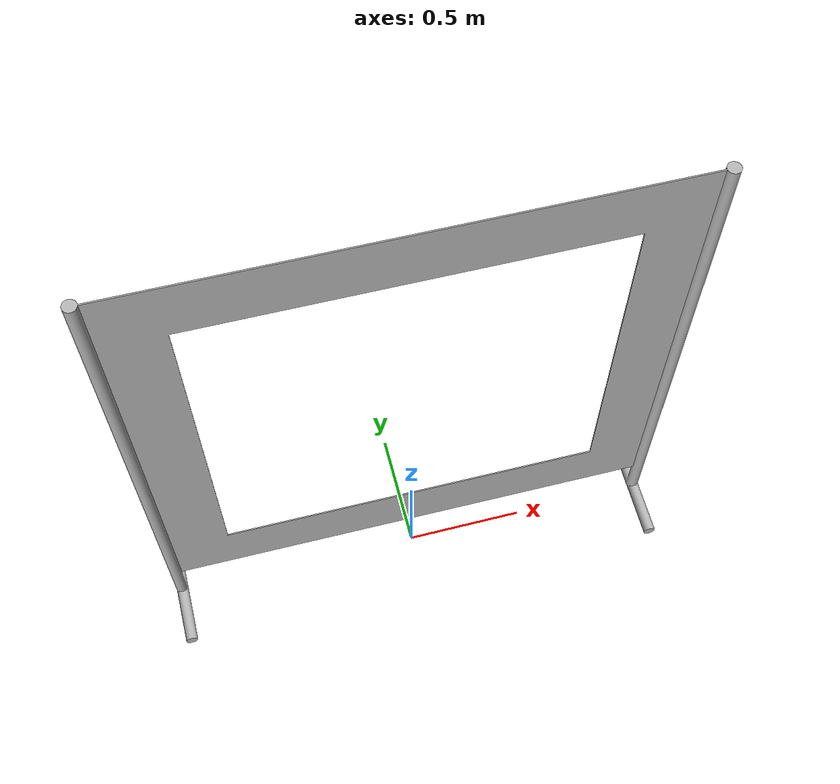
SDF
<?xml version="1.0" ?>
<sdf version="1.6">
  <model name="MAVLab TU Delft gate">
    <static>true</static>
    <link name="gate_link">
      <visual name="visual">
        <geometry>
          <mesh>
            <uri>model://mavlab_gate/meshes/mavlab_gate.obj</uri>
          </mesh>
        </geometry>
      </visual>
      <collision name="collision">
        <geometry>
          <mesh>
            <uri>model://mavlab_gate/meshes/mavlab_gate.obj</uri>
          </mesh>
        </geometry>
      </collision>
    </link>
  </model>
</sdf>
